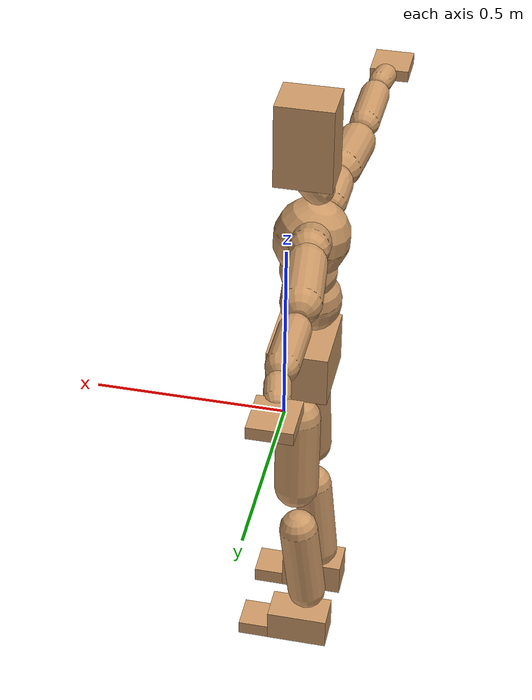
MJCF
<mujoco model="humanoid">
  <compiler coordinate="local" />
  <asset>
    <texture type="skybox" builtin="gradient" rgb1=".4 .5 .6" rgb2="0 0 0" width="100" height="100" />
    <texture builtin="flat" height="1278" mark="cross" markrgb="1 1 1" name="texgeom" random="0.01" rgb1="0.8 0.6 0.4" rgb2="0.8 0.6 0.4" type="cube" width="127" />
    <texture builtin="checker" height="100" name="texplane" rgb1="0 0 0" rgb2="0.8 0.8 0.8" type="2d" width="100" />
    <material name="MatPlane" reflectance="0.5" shininess="1" specular="1" texrepeat="60 60" texture="texplane" />
    <material name="geom" texture="texgeom" texuniform="true" />
  </asset>
  <worldbody>
    <light cutoff="100" diffuse="1 1 1" dir="-0 0 -1.3" directional="true" exponent="1" pos="0 0 1.3" specular=".1 .1 .1" />
    <body name="Pelvis" pos="-0.0018 -0.2233 0.0282">
      <geom type="box" pos="-0.0055 -0.0000 -0.0121" size="0.083 0.1069 0.0722" quat="1.0000 0.0000 0.0000 0.0000" density="1000" conaffinity="1" condim="3" contype="7" margin="0.001" rgba="0.8 0.6 .4 1" />
      <body name="L_Hip" pos="-0.0068 0.0695 -0.0914">
        <geom type="capsule" contype="1" conaffinity="1" density="2040.816327" fromto="-0.0009 0.0069 -0.0750 -0.0036 0.0274 -0.3002" size="0.0615" condim="3" margin="0.001" rgba="0.8 0.6 .4 1" />
        <body name="L_Knee" pos="-0.0045 0.0343 -0.3752">
          <geom type="capsule" contype="1" conaffinity="1" density="1234.567901" fromto="-0.0087 -0.0027 -0.0796 -0.0350 -0.0109 -0.3184" size="0.0541" condim="3" margin="0.001" rgba="0.8 0.6 .4 1" />
          <body name="L_Talus" pos="-0.0437 -0.0136 -0.398">
            <body name="L_Ankle" pos="-0.03663579411702817 0.005949466668174351 -0.03151264226387804">
              <geom type="box" pos="0.06083579411702817 0.01735053333182565 0.007612642263878037" size="0.085 0.0483 0.0464" quat="1.0000 0.0000 0.0000 0.0000" density="1000" conaffinity="1" condim="3" contype="7" margin="0.001" rgba="0.8 0.6 .4 1" />
              <body name="L_Toe" pos="0.15593579411702818 0.02045053333182565 -0.024287357736121964">
                <geom type="box" pos="0.0248 -0.0030 0.0055" size="0.0496 0.0478 0.02" quat="1.0000 0.0000 0.0000 0.0000" density="1000" conaffinity="1" condim="3" contype="7" margin="0.001" rgba="0.8 0.6 .4 1" />
                <joint name="L_Toe_y" type="hinge" pos="0 0 0" axis="-0.5809541852628335 0.8139362595594309 0.0" armature="0.02" stiffness="0" damping="0" range="-60 30" limited="true" />
              </body>
              <joint name="L_Subtalar_x" type="hinge" pos="0 0 0" axis="0.787180020856335 -0.1209490032045439 0.6047470160227725" armature="0.02" stiffness="0" damping="0" range="-20 20" limited="true" />
              <inertial pos="0.06352468244629567 0.01993942335982553 0.004957085459936311" mass="1.3715653896331788" fullinertia="0.0020801050006854795 0.004557995303330583 0.004654193008435602 9.547789350533575e-05 -9.793651991761576e-05 -9.429433054082559e-05" />
            </body>
            <joint name="L_Ankle_y" type="hinge" pos="0 0 0" axis="-0.10501403567558429 0.9791263326308125 -0.17402205911913202" armature="0.02" stiffness="0" damping="0" range="-13.25 58.35" limited="true" />
            <inertial pos="0 0 0" mass="0.15239615440368653" diaginertia="1e-5 1e-5 1e-5" />
          </body>
          <joint name="L_Knee_y" type="hinge" pos="0 0 0" axis="3.9837287899015113e-10 0.997496697000145 0.07071307852017696" armature="0.02" stiffness="0" damping="0" range="-1.3 139.8" limited="true" />
        </body>
        <joint name="L_Hip_y" type="hinge" pos="0 0 0" axis="-0.0 1.0 -0.0" armature="0.02" stiffness="0" damping="0" range="-132.1 17.75" limited="true" />
        <joint name="L_Hip_x" type="hinge" pos="0 0 0" axis="1.0 -0.0 -0.0" armature="0.02" stiffness="0" damping="0" range="-30 45" limited="true" />
        <joint name="L_Hip_z" type="hinge" pos="0 0 0" axis="-0.0 -0.0 1.0" armature="0.02" stiffness="0" damping="0" range="-45 45" limited="true" />
      </body>
      <body name="R_Hip" pos="-0.0043 -0.0677 -0.0905">
        <geom type="capsule" contype="1" conaffinity="1" density="2040.816327" fromto="-0.0018 -0.0077 -0.0765 -0.0071 -0.0306 -0.3061" size="0.0606" condim="3" margin="0.001" rgba="0.8 0.6 .4 1" />
        <body name="R_Knee" pos="-0.0089 -0.0383 -0.3826">
          <geom type="capsule" contype="1" conaffinity="1" density="1234.567901" fromto="-0.0085 0.0032 -0.0797 -0.0338 0.0126 -0.3187" size="0.0541" condim="3" margin="0.001" rgba="0.8 0.6 .4 1" />
          <body name="R_Talus" pos="-0.0423 0.0158 -0.3984">
            <body name="R_Ankle" pos="-0.036755972893958856 -0.005968983090427601 -0.03161601523275731">
              <geom type="box" pos="0.06235597289395886 -0.0152310169095724 0.014216015232757312" size="0.0865 0.0483 0.0478" quat="1.0000 0.0000 0.0000 0.0000" density="1000" conaffinity="1" condim="3" contype="7" margin="0.001" rgba="0.8 0.6 .4 1" />
              <body name="R_Toe" pos="0.16005597289395887 -0.0194310169095724 -0.016483984767242686">
                <geom type="box" pos="0.0227 0.0042 0.0045" size="0.0493 0.0479 0.0216" quat="1.0000 0.0000 0.0000 0.0000" density="1000" conaffinity="1" condim="3" contype="7" margin="0.001" rgba="0.8 0.6 .4 1" />
                <joint name="R_Toe_y" type="hinge" pos="0 0 0" axis="0.5809541852628335 0.8139362595594309 0.0" armature="0.02" stiffness="0" damping="0" range="-60 30" limited="true" />
              </body>
              <joint name="R_Subtalar_x" type="hinge" pos="0 0 0" axis="0.787180020856335 0.1209490032045439 0.6047470160227725" armature="0.02" stiffness="0" damping="0" range="-20 20" limited="true" />
              <inertial pos="0.0652004157919939 -0.017586571359130658 0.012282682455733995" mass="1.4378832221031188" fullinertia="0.002315641353035487 0.005021375549629335 0.005020926473906945 -9.634165281026733e-05 -7.907288046147751e-05 6.548222317464614e-05" />
            </body>
            <joint name="R_Ankle_y" type="hinge" pos="0 0 0" axis="0.10501403567558429 0.9791263326308125 0.17402205911913202" armature="0.02" stiffness="0" damping="0" range="-13.25 58.35" limited="true" />
            <inertial pos="0 0 0" mass="0.1597648024559021" diaginertia="1e-5 1e-5 1e-5" />
          </body>
          <joint name="R_Knee_y" type="hinge" pos="0 0 0" axis="-3.9837287899015113e-10 0.997496697000145 -0.07071307852017696" armature="0.02" stiffness="0" damping="0" range="-1.3 139.8" limited="true" />
        </body>
        <joint name="R_Hip_y" type="hinge" pos="0 0 0" axis="-0.0 1.0 -0.0" armature="0.02" stiffness="0" damping="0" range="-132.1 17.75" limited="true" />
        <joint name="R_Hip_x" type="hinge" pos="0 0 0" axis="1.0 0.0 0.0" armature="0.02" stiffness="0" damping="0" range="-45 30" limited="true" />
        <joint name="R_Hip_z" type="hinge" pos="0 0 0" axis="0.0 0.0 1.0" armature="0.02" stiffness="0" damping="0" range="-45 45" limited="true" />
      </body>
      <body name="Torso" pos="-0.0267 -0.0025 0.109">
        <joint name="Torso_x" type="hinge" pos="0 0 0" axis="1 0 0" stiffness="0" damping="0" armature="0.02" range="-11.666666666666666 11.666666666666666" limited="true" />
        <joint name="Torso_y" type="hinge" pos="0 0 0" axis="0 1 0" stiffness="0" damping="0" armature="0.02" range="-8.333333333333334 20.0" limited="true" />
        <joint name="Torso_z" type="hinge" pos="0 0 0" axis="0 0 1" stiffness="0" damping="0" armature="0.02" range="-15.0 15.0" limited="true" />
        <geom type="capsule" contype="1" conaffinity="1" density="2040.816327" fromto="0.0005 0.0025 0.0608 0.0006 0.0030 0.0743" size="0.0769" condim="3" margin="0.001" rgba="0.8 0.6 .4 1" />
        <body name="Spine" pos="0.0011 0.0055 0.1352">
          <joint name="Spine_x" type="hinge" pos="0 0 0" axis="1 0 0" stiffness="0" damping="0" armature="0.02" range="-11.666666666666666 11.666666666666666" limited="true" />
          <joint name="Spine_y" type="hinge" pos="0 0 0" axis="0 1 0" stiffness="0" damping="0" armature="0.02" range="-8.333333333333334 20.0" limited="true" />
          <joint name="Spine_z" type="hinge" pos="0 0 0" axis="0 0 1" stiffness="0" damping="0" armature="0.02" range="-15.0 15.0" limited="true" />
          <geom type="capsule" contype="1" conaffinity="1" density="2040.816327" fromto="0.0114 0.0007 0.0238 0.0140 0.0008 0.0291" size="0.0755" condim="3" margin="0.001" rgba="0.8 0.6 .4 1" />
          <body name="Chest" pos="0.0254 0.0015 0.0529">
            <joint name="Chest_x" type="hinge" pos="0 0 0" axis="1 0 0" stiffness="0" damping="0" armature="0.02" range="-11.666666666666666 11.666666666666666" limited="true" />
            <joint name="Chest_y" type="hinge" pos="0 0 0" axis="0 1 0" stiffness="0" damping="0" armature="0.02" range="-8.333333333333334 20.0" limited="true" />
            <joint name="Chest_z" type="hinge" pos="0 0 0" axis="0 0 1" stiffness="0" damping="0" armature="0.02" range="-15.0 15.0" limited="true" />
            <geom type="capsule" contype="1" conaffinity="1" density="2040.816327" fromto="-0.0173 -0.0009 0.0682 -0.0212 -0.0010 0.0833" size="0.1002" condim="3" margin="0.001" rgba="0.8 0.6 .4 1" />
            <body name="Neck" pos="-0.0429 -0.0028 0.2139">
              <joint name="Neck_x" type="hinge" pos="0 0 0" axis="1 0 0" stiffness="0" damping="0" armature="0.02" range="-22.325 22.325" limited="true" />
              <joint name="Neck_y" type="hinge" pos="0 0 0" axis="0 1 0" stiffness="0" damping="0" armature="0.02" range="-31.85 31.85" limited="true" />
              <joint name="Neck_z" type="hinge" pos="0 0 0" axis="0 0 1" stiffness="0" damping="0" armature="0.02" range="-36.6 36.6" limited="true" />
              <geom type="capsule" contype="1" conaffinity="1" density="1000" fromto="0.0103 0.0010 0.0130 0.0411 0.0041 0.0520" size="0.0436" condim="3" margin="0.001" rgba="0.8 0.6 .4 1" />
              <body name="Head" pos="0.0513 0.0052 0.065">
                <joint name="Head_x" type="hinge" pos="0 0 0" axis="1 0 0" stiffness="0" damping="0" armature="0.02" range="-22.325 22.325" limited="true" />
                <joint name="Head_y" type="hinge" pos="0 0 0" axis="0 1 0" stiffness="0" damping="0" armature="0.02" range="-31.85 31.85" limited="true" />
                <joint name="Head_z" type="hinge" pos="0 0 0" axis="0 0 1" stiffness="0" damping="0" armature="0.02" range="-36.6 36.6" limited="true" />
                <geom type="box" pos="-0.0116 -0.0042 0.0876" size="0.076 0.0606 0.1154" quat="1.0000 0.0000 0.0000 0.0000" density="1000" conaffinity="1" condim="3" contype="7" margin="0.001" rgba="0.8 0.6 .4 1" />
              </body>
            </body>
            <body name="L_Thorax" pos="-0.0341 0.0788 0.1217">
              <joint name="L_Thorax_x" type="hinge" pos="0 0 0" axis="1 0 0" stiffness="0" damping="0" armature="0.02" range="-15 15" limited="true" />
              <joint name="L_Thorax_y" type="hinge" pos="0 0 0" axis="0 1 0" stiffness="0" damping="0" armature="0.02" range="-15 15" limited="true" />
              <joint name="L_Thorax_z" type="hinge" pos="0 0 0" axis="0 0 1" stiffness="0" damping="0" armature="0.02" range="-15 15" limited="true" />
              <geom type="capsule" contype="1" conaffinity="1" density="1000" fromto="-0.0018 0.0182 0.0061 -0.0071 0.0728 0.0244" size="0.0521" condim="3" margin="0.001" rgba="0.8 0.6 .4 1" />
              <body name="L_Shoulder" pos="-0.0089 0.091 0.0305">
                <joint name="L_Shoulder_x" type="hinge" pos="0 0 0" axis="1 0 0" stiffness="0" damping="0" armature="0.02" range="-90 90" limited="true" />
                <joint name="L_Shoulder_y" type="hinge" pos="0 0 0" axis="0 1 0" stiffness="0" damping="0" armature="0.02" range="-90 90" limited="true" />
                <joint name="L_Shoulder_z" type="hinge" pos="0 0 0" axis="0 0 1" stiffness="0" damping="0" armature="0.02" range="-170.4 60" limited="true" />
                <geom type="capsule" contype="1" conaffinity="1" density="1000" fromto="-0.0055 0.0519 -0.0026 -0.0220 0.2077 -0.0102" size="0.0517" condim="3" margin="0.001" rgba="0.8 0.6 .4 1" />
                <body name="L_Elbow" pos="-0.0275 0.2596 -0.0128">
                  <joint name="L_Elbow_x" type="hinge" pos="0 0 0" axis="1 0 0" stiffness="0" damping="0" armature="0.02" range="-0.5 0.5" limited="true" />
                  <joint name="L_Elbow_y" type="hinge" pos="0 0 0" axis="0 1 0" stiffness="0" damping="0" armature="0.02" range="-0.5 0.5" limited="true" />
                  <joint name="L_Elbow_z" type="hinge" pos="0 0 0" axis="0 0 1" stiffness="0" damping="0" armature="0.02" range="-147.3 2.75" limited="true" />
                  <geom type="capsule" contype="1" conaffinity="1" density="1000" fromto="-0.0002 0.0498 0.0018 -0.0009 0.1994 0.0072" size="0.0405" condim="3" margin="0.001" rgba="0.8 0.6 .4 1" />
                  <body name="L_Wrist" pos="-0.0012 0.2492 0.009">
                    <joint name="L_Wrist_x" type="hinge" pos="0 0 0" axis="1 0 0" stiffness="0" damping="0" armature="0.02" range="-87.59 68.23" limited="true" />
                    <joint name="L_Wrist_y" type="hinge" pos="0 0 0" axis="0 1 0" stiffness="0" damping="0" armature="0.02" range="-79.45 87.8" limited="true" />
                    <joint name="L_Wrist_z" type="hinge" pos="0 0 0" axis="0 0 1" stiffness="0" damping="0" armature="0.02" range="-20 30" limited="true" />
                    <geom type="capsule" contype="1" conaffinity="1" density="1000" fromto="-0.0030 0.0168 -0.0016 -0.0120 0.0672 -0.0065" size="0.0318" condim="3" margin="0.001" rgba="0.8 0.6 .4 1" />
                    <body name="L_Hand" pos="-0.0149 0.084 -0.0082">
                      <joint name="L_Hand_x" type="hinge" pos="0 0 0" axis="1 0 0" stiffness="0" damping="0" armature="0.02" range="-0.5 0.5" limited="true" />
                      <joint name="L_Hand_y" type="hinge" pos="0 0 0" axis="0 1 0" stiffness="0" damping="0" armature="0.02" range="-0.5 0.5" limited="true" />
                      <joint name="L_Hand_z" type="hinge" pos="0 0 0" axis="0 0 1" stiffness="0" damping="0" armature="0.02" range="-0.5 0.5" limited="true" />
                      <geom type="box" pos="-0.0058 0.0493 0.0010" size="0.0538 0.0585 0.0158" quat="1.0000 0.0000 0.0000 0.0000" density="1000" conaffinity="1" condim="3" contype="7" margin="0.001" rgba="0.8 0.6 .4 1" />
                    </body>
                  </body>
                </body>
              </body>
            </body>
            <body name="R_Thorax" pos="-0.0386 -0.0818 0.1188">
              <joint name="R_Thorax_x" type="hinge" pos="0 0 0" axis="1 0 0" stiffness="0" damping="0" armature="0.02" range="-15 15" limited="true" />
              <joint name="R_Thorax_y" type="hinge" pos="0 0 0" axis="0 1 0" stiffness="0" damping="0" armature="0.02" range="-15 15" limited="true" />
              <joint name="R_Thorax_z" type="hinge" pos="0 0 0" axis="0 0 1" stiffness="0" damping="0" armature="0.02" range="-15 15" limited="true" />
              <geom type="capsule" contype="1" conaffinity="1" density="1000" fromto="-0.0018 -0.0192 0.0065 -0.0073 -0.0768 0.0260" size="0.0511" condim="3" margin="0.001" rgba="0.8 0.6 .4 1" />
              <body name="R_Shoulder" pos="-0.0091 -0.096 0.0326">
                <joint name="R_Shoulder_x" type="hinge" pos="0 0 0" axis="1 0 0" stiffness="0" damping="0" armature="0.02" range="-90 90" limited="true" />
                <joint name="R_Shoulder_y" type="hinge" pos="0 0 0" axis="0 1 0" stiffness="0" damping="0" armature="0.02" range="-90 90" limited="true" />
                <joint name="R_Shoulder_z" type="hinge" pos="0 0 0" axis="0 0 1" stiffness="0" damping="0" armature="0.02" range="-60 170.4" limited="true" />
                <geom type="capsule" contype="1" conaffinity="1" density="1000" fromto="-0.0043 -0.0507 -0.0027 -0.0171 -0.2030 -0.0107" size="0.0531" condim="3" margin="0.001" rgba="0.8 0.6 .4 1" />
                <body name="R_Elbow" pos="-0.0214 -0.2537 -0.0133">
                  <joint name="R_Elbow_x" type="hinge" pos="0 0 0" axis="1 0 0" stiffness="0" damping="0" armature="0.02" range="-0.5 0.5" limited="true" />
                  <joint name="R_Elbow_y" type="hinge" pos="0 0 0" axis="0 1 0" stiffness="0" damping="0" armature="0.02" range="-0.5 0.5" limited="true" />
                  <joint name="R_Elbow_z" type="hinge" pos="0 0 0" axis="0 0 1" stiffness="0" damping="0" armature="0.02" range="-2.75 147.3" limited="true" />
                  <geom type="capsule" contype="1" conaffinity="1" density="1000" fromto="-0.0011 -0.0511 0.0016 -0.0044 -0.2042 0.0062" size="0.0408" condim="3" margin="0.001" rgba="0.8 0.6 .4 1" />
                  <body name="R_Wrist" pos="-0.0056 -0.2553 0.0078">
                    <joint name="R_Wrist_x" type="hinge" pos="0 0 0" axis="1 0 0" stiffness="0" damping="0" armature="0.02" range="-68.23 87.59" limited="true" />
                    <joint name="R_Wrist_y" type="hinge" pos="0 0 0" axis="0 1 0" stiffness="0" damping="0" armature="0.02" range="-87.8 79.45" limited="true" />
                    <joint name="R_Wrist_z" type="hinge" pos="0 0 0" axis="0 0 1" stiffness="0" damping="0" armature="0.02" range="-30 20" limited="true" />
                    <geom type="capsule" contype="1" conaffinity="1" density="1000" fromto="-0.0021 -0.0169 -0.0012 -0.0083 -0.0677 -0.0049" size="0.0326" condim="3" margin="0.001" rgba="0.8 0.6 .4 1" />
                    <body name="R_Hand" pos="-0.0103 -0.0846 -0.0061">
                      <joint name="R_Hand_x" type="hinge" pos="0 0 0" axis="1 0 0" stiffness="0" damping="0" armature="0.02" range="-0.5 0.5" limited="true" />
                      <joint name="R_Hand_y" type="hinge" pos="0 0 0" axis="0 1 0" stiffness="0" damping="0" armature="0.02" range="-0.5 0.5" limited="true" />
                      <joint name="R_Hand_z" type="hinge" pos="0 0 0" axis="0 0 1" stiffness="0" damping="0" armature="0.02" range="-0.5 0.5" limited="true" />
                      <geom type="box" pos="-0.0079 -0.0462 -0.0009" size="0.0546 0.0569 0.0164" quat="1.0000 0.0000 0.0000 0.0000" density="1000" conaffinity="1" condim="3" contype="7" margin="0.001" rgba="0.8 0.6 .4 1" />
                    </body>
                  </body>
                </body>
              </body>
            </body>
          </body>
        </body>
      </body>
      <joint type="free" name="Pelvis" limited="false" actuatorfrclimited="false" />
    </body>
  </worldbody>
  <actuator>
    <motor name="L_Toe_y" joint="L_Toe_y" gear="1" ctrllimited="true" ctrlrange="-5000 5000" />
    <motor name="L_Subtalar_x" joint="L_Subtalar_x" gear="1" ctrllimited="true" ctrlrange="-5000 5000" />
    <motor name="L_Ankle_y" joint="L_Ankle_y" gear="1" ctrllimited="true" ctrlrange="-5000 5000" />
    <motor name="L_Knee_y" joint="L_Knee_y" gear="1" ctrllimited="true" ctrlrange="-5000 5000" />
    <motor name="L_Hip_y" joint="L_Hip_y" gear="1" ctrllimited="true" ctrlrange="-5000 5000" />
    <motor name="L_Hip_x" joint="L_Hip_x" gear="1" ctrllimited="true" ctrlrange="-5000 5000" />
    <motor name="L_Hip_z" joint="L_Hip_z" gear="1" ctrllimited="true" ctrlrange="-5000 5000" />
    <motor name="R_Toe_y" joint="R_Toe_y" gear="1" ctrllimited="true" ctrlrange="-5000 5000" />
    <motor name="R_Subtalar_x" joint="R_Subtalar_x" gear="1" ctrllimited="true" ctrlrange="-5000 5000" />
    <motor name="R_Ankle_y" joint="R_Ankle_y" gear="1" ctrllimited="true" ctrlrange="-5000 5000" />
    <motor name="R_Knee_y" joint="R_Knee_y" gear="1" ctrllimited="true" ctrlrange="-5000 5000" />
    <motor name="R_Hip_y" joint="R_Hip_y" gear="1" ctrllimited="true" ctrlrange="-5000 5000" />
    <motor name="R_Hip_x" joint="R_Hip_x" gear="1" ctrllimited="true" ctrlrange="-5000 5000" />
    <motor name="R_Hip_z" joint="R_Hip_z" gear="1" ctrllimited="true" ctrlrange="-5000 5000" />
    <motor name="Torso_x" joint="Torso_x" gear="1" ctrllimited="true" ctrlrange="-5000 5000" />
    <motor name="Torso_y" joint="Torso_y" gear="1" ctrllimited="true" ctrlrange="-5000 5000" />
    <motor name="Torso_z" joint="Torso_z" gear="1" ctrllimited="true" ctrlrange="-5000 5000" />
    <motor name="Spine_x" joint="Spine_x" gear="1" ctrllimited="true" ctrlrange="-5000 5000" />
    <motor name="Spine_y" joint="Spine_y" gear="1" ctrllimited="true" ctrlrange="-5000 5000" />
    <motor name="Spine_z" joint="Spine_z" gear="1" ctrllimited="true" ctrlrange="-5000 5000" />
    <motor name="Chest_x" joint="Chest_x" gear="1" ctrllimited="true" ctrlrange="-5000 5000" />
    <motor name="Chest_y" joint="Chest_y" gear="1" ctrllimited="true" ctrlrange="-5000 5000" />
    <motor name="Chest_z" joint="Chest_z" gear="1" ctrllimited="true" ctrlrange="-5000 5000" />
    <motor name="Neck_x" joint="Neck_x" gear="1" ctrllimited="true" ctrlrange="-5000 5000" />
    <motor name="Neck_y" joint="Neck_y" gear="1" ctrllimited="true" ctrlrange="-5000 5000" />
    <motor name="Neck_z" joint="Neck_z" gear="1" ctrllimited="true" ctrlrange="-5000 5000" />
    <motor name="Head_x" joint="Head_x" gear="1" ctrllimited="true" ctrlrange="-5000 5000" />
    <motor name="Head_y" joint="Head_y" gear="1" ctrllimited="true" ctrlrange="-5000 5000" />
    <motor name="Head_z" joint="Head_z" gear="1" ctrllimited="true" ctrlrange="-5000 5000" />
    <motor name="L_Thorax_x" joint="L_Thorax_x" gear="1" ctrllimited="true" ctrlrange="-5000 5000" />
    <motor name="L_Thorax_y" joint="L_Thorax_y" gear="1" ctrllimited="true" ctrlrange="-5000 5000" />
    <motor name="L_Thorax_z" joint="L_Thorax_z" gear="1" ctrllimited="true" ctrlrange="-5000 5000" />
    <motor name="L_Shoulder_x" joint="L_Shoulder_x" gear="1" ctrllimited="true" ctrlrange="-5000 5000" />
    <motor name="L_Shoulder_y" joint="L_Shoulder_y" gear="1" ctrllimited="true" ctrlrange="-5000 5000" />
    <motor name="L_Shoulder_z" joint="L_Shoulder_z" gear="1" ctrllimited="true" ctrlrange="-5000 5000" />
    <motor name="L_Elbow_x" joint="L_Elbow_x" gear="1" ctrllimited="true" ctrlrange="-5000 5000" />
    <motor name="L_Elbow_y" joint="L_Elbow_y" gear="1" ctrllimited="true" ctrlrange="-5000 5000" />
    <motor name="L_Elbow_z" joint="L_Elbow_z" gear="1" ctrllimited="true" ctrlrange="-5000 5000" />
    <motor name="L_Wrist_x" joint="L_Wrist_x" gear="1" ctrllimited="true" ctrlrange="-5000 5000" />
    <motor name="L_Wrist_y" joint="L_Wrist_y" gear="1" ctrllimited="true" ctrlrange="-5000 5000" />
    <motor name="L_Wrist_z" joint="L_Wrist_z" gear="1" ctrllimited="true" ctrlrange="-5000 5000" />
    <motor name="L_Hand_x" joint="L_Hand_x" gear="1" ctrllimited="true" ctrlrange="-5000 5000" />
    <motor name="L_Hand_y" joint="L_Hand_y" gear="1" ctrllimited="true" ctrlrange="-5000 5000" />
    <motor name="L_Hand_z" joint="L_Hand_z" gear="1" ctrllimited="true" ctrlrange="-5000 5000" />
    <motor name="R_Thorax_x" joint="R_Thorax_x" gear="1" ctrllimited="true" ctrlrange="-5000 5000" />
    <motor name="R_Thorax_y" joint="R_Thorax_y" gear="1" ctrllimited="true" ctrlrange="-5000 5000" />
    <motor name="R_Thorax_z" joint="R_Thorax_z" gear="1" ctrllimited="true" ctrlrange="-5000 5000" />
    <motor name="R_Shoulder_x" joint="R_Shoulder_x" gear="1" ctrllimited="true" ctrlrange="-5000 5000" />
    <motor name="R_Shoulder_y" joint="R_Shoulder_y" gear="1" ctrllimited="true" ctrlrange="-5000 5000" />
    <motor name="R_Shoulder_z" joint="R_Shoulder_z" gear="1" ctrllimited="true" ctrlrange="-5000 5000" />
    <motor name="R_Elbow_x" joint="R_Elbow_x" gear="1" ctrllimited="true" ctrlrange="-5000 5000" />
    <motor name="R_Elbow_y" joint="R_Elbow_y" gear="1" ctrllimited="true" ctrlrange="-5000 5000" />
    <motor name="R_Elbow_z" joint="R_Elbow_z" gear="1" ctrllimited="true" ctrlrange="-5000 5000" />
    <motor name="R_Wrist_x" joint="R_Wrist_x" gear="1" ctrllimited="true" ctrlrange="-5000 5000" />
    <motor name="R_Wrist_y" joint="R_Wrist_y" gear="1" ctrllimited="true" ctrlrange="-5000 5000" />
    <motor name="R_Wrist_z" joint="R_Wrist_z" gear="1" ctrllimited="true" ctrlrange="-5000 5000" />
    <motor name="R_Hand_x" joint="R_Hand_x" gear="1" ctrllimited="true" ctrlrange="-5000 5000" />
    <motor name="R_Hand_y" joint="R_Hand_y" gear="1" ctrllimited="true" ctrlrange="-5000 5000" />
    <motor name="R_Hand_z" joint="R_Hand_z" gear="1" ctrllimited="true" ctrlrange="-5000 5000" />
  </actuator>
  <contact>
    <exclude body1="Torso" body2="Chest" />
    <exclude body1="Head" body2="Chest" />
    <exclude body1="R_Knee" body2="R_Toe" />
    <exclude body1="R_Knee" body2="L_Ankle" />
    <exclude body1="R_Knee" body2="L_Toe" />
    <exclude body1="L_Knee" body2="L_Toe" />
    <exclude body1="L_Knee" body2="R_Ankle" />
    <exclude body1="L_Knee" body2="R_Toe" />
    <exclude body1="L_Shoulder" body2="Chest" />
    <exclude body1="R_Shoulder" body2="Chest" />
  </contact>
  <sensor />
  <size njmax="700" nconmax="700" />
</mujoco>
